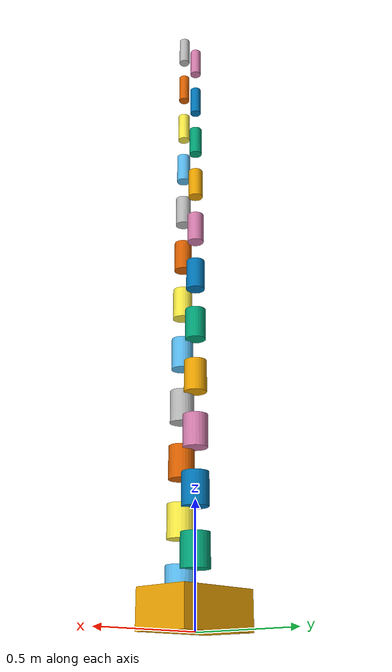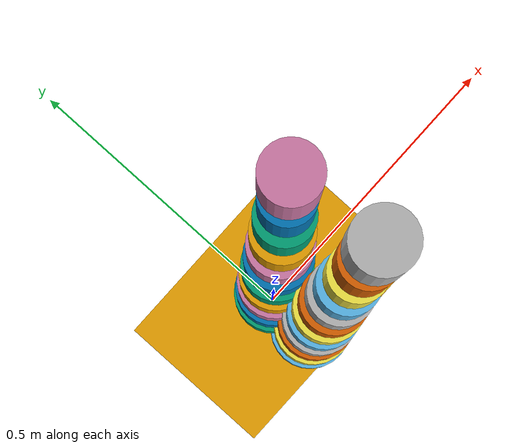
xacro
<?xml version="1.0"?>
<robot xmlns:xacro="http://www.ros.org/wiki/xacro" name="stretch">
    <xacro:arg name="initial_positions_file" default="initial_positions.yaml" />

    <!-- Import stretch urdf file -->
    <xacro:include filename="$(find stretch_description)/urdf/stretch.urdf" />

    <!-- This added sections seems to confuse things so ignore it -->

    <!-- We add another fake link between odom and base-link -->
    <link name="fake_turn_link"/>
    <joint name="base_turn" type="revolute">
        <limit effort="100.0" lower="-3.14" upper="3.14" velocity="1.0"/>

        <parent link="fake_turn_link"/>
        <child link="base_link"/>
        <axis xyz="0 0 1"/>
    </joint>

    <!-- Import control_xacro -->
    <xacro:include filename="stretch.ros2_control.xacro" />

    <xacro:stretch_ros2_control name="FakeSystem" initial_positions_file="$(arg initial_positions_file)"/>

</robot>

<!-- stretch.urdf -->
<!-- 现实基准原件: stretch_description (urdf/stretch.urdf)                                          -->
<!-- 机型描述: Hello Robot Stretch 标准 ROS Description 基准                                                                   -->
<!-- 运动学拓扑统计: 44 连杆 / 43 关节                                                    -->
<robot name="stretch_description">
  <link name="base_link">
    <inertial>
      <origin xyz="0 0 0.08" rpy="0 0 0"/>
      <mass value="16.40"/>
      <inertia ixx="0.185" ixy="0.0" ixz="0.0" iyy="0.240" iyz="0.0" izz="0.295"/>
    </inertial>
    <visual>
      <origin xyz="0 0 0.08" rpy="0 0 0"/>
      <geometry><box size="0.38 0.26 0.16"/></geometry>
    </visual>
    <collision>
      <origin xyz="0 0 0.08" rpy="0 0 0"/>
      <geometry><box size="0.38 0.26 0.16"/></geometry>
    </collision>
  </link>

  <link name="link_1">
    <inertial>
      <origin xyz="0 0 0.06" rpy="0 0 0"/>
      <mass value="3.200"/>
      <inertia ixx="0.014" ixy="0.0" ixz="0.0" iyy="0.014" iyz="0.0" izz="0.008"/>
    </inertial>
    <visual>
      <origin xyz="0 0 0.06" rpy="0 0 0"/>
      <geometry><cylinder radius="0.063" length="0.14"/></geometry>
    </visual>
  </link>
  <joint name="joint_1" type="revolute">
    <parent link="base_link"/>
    <child link="link_1"/>
    <origin xyz="0 -0.080 0.12" rpy="0 0 0"/>
    <axis xyz="1 0 0"/>
    <limit lower="-2.7925" upper="2.7925" effort="85.0" velocity="6.28"/>
  </joint>

  <link name="link_2">
    <inertial>
      <origin xyz="0 0 0.06" rpy="0 0 0"/>
      <mass value="2.263"/>
      <inertia ixx="0.014" ixy="0.0" ixz="0.0" iyy="0.014" iyz="0.0" izz="0.008"/>
    </inertial>
    <visual>
      <origin xyz="0 0 0.06" rpy="0 0 0"/>
      <geometry><cylinder radius="0.061" length="0.14"/></geometry>
    </visual>
  </link>
  <joint name="joint_2" type="revolute">
    <parent link="link_1"/>
    <child link="link_2"/>
    <origin xyz="0 0.080 0.12" rpy="0 0 0"/>
    <axis xyz="0 1 0"/>
    <limit lower="-2.7925" upper="2.7925" effort="85.0" velocity="6.28"/>
  </joint>

  <link name="link_3">
    <inertial>
      <origin xyz="0 0 0.06" rpy="0 0 0"/>
      <mass value="1.848"/>
      <inertia ixx="0.014" ixy="0.0" ixz="0.0" iyy="0.014" iyz="0.0" izz="0.008"/>
    </inertial>
    <visual>
      <origin xyz="0 0 0.06" rpy="0 0 0"/>
      <geometry><cylinder radius="0.059" length="0.14"/></geometry>
    </visual>
  </link>
  <joint name="joint_3" type="revolute">
    <parent link="link_2"/>
    <child link="link_3"/>
    <origin xyz="0 -0.080 0.12" rpy="0 0 0"/>
    <axis xyz="0 0 1"/>
    <limit lower="-2.7925" upper="2.7925" effort="85.0" velocity="6.28"/>
  </joint>

  <link name="link_4">
    <inertial>
      <origin xyz="0 0 0.06" rpy="0 0 0"/>
      <mass value="1.600"/>
      <inertia ixx="0.014" ixy="0.0" ixz="0.0" iyy="0.014" iyz="0.0" izz="0.008"/>
    </inertial>
    <visual>
      <origin xyz="0 0 0.06" rpy="0 0 0"/>
      <geometry><cylinder radius="0.057" length="0.14"/></geometry>
    </visual>
  </link>
  <joint name="joint_4" type="revolute">
    <parent link="link_3"/>
    <child link="link_4"/>
    <origin xyz="0 0.080 0.12" rpy="0 0 0"/>
    <axis xyz="0 1 0"/>
    <limit lower="-2.7925" upper="2.7925" effort="85.0" velocity="6.28"/>
  </joint>

  <link name="link_5">
    <inertial>
      <origin xyz="0 0 0.06" rpy="0 0 0"/>
      <mass value="1.431"/>
      <inertia ixx="0.014" ixy="0.0" ixz="0.0" iyy="0.014" iyz="0.0" izz="0.008"/>
    </inertial>
    <visual>
      <origin xyz="0 0 0.06" rpy="0 0 0"/>
      <geometry><cylinder radius="0.055" length="0.14"/></geometry>
    </visual>
  </link>
  <joint name="joint_5" type="revolute">
    <parent link="link_4"/>
    <child link="link_5"/>
    <origin xyz="0 -0.080 0.12" rpy="0 0 0"/>
    <axis xyz="1 0 0"/>
    <limit lower="-2.7925" upper="2.7925" effort="85.0" velocity="6.28"/>
  </joint>

  <link name="link_6">
    <inertial>
      <origin xyz="0 0 0.06" rpy="0 0 0"/>
      <mass value="1.306"/>
      <inertia ixx="0.014" ixy="0.0" ixz="0.0" iyy="0.014" iyz="0.0" izz="0.008"/>
    </inertial>
    <visual>
      <origin xyz="0 0 0.06" rpy="0 0 0"/>
      <geometry><cylinder radius="0.053" length="0.14"/></geometry>
    </visual>
  </link>
  <joint name="joint_6" type="revolute">
    <parent link="link_5"/>
    <child link="link_6"/>
    <origin xyz="0 0.080 0.12" rpy="0 0 0"/>
    <axis xyz="0 0 1"/>
    <limit lower="-2.7925" upper="2.7925" effort="85.0" velocity="6.28"/>
  </joint>

  <link name="link_7">
    <inertial>
      <origin xyz="0 0 0.06" rpy="0 0 0"/>
      <mass value="1.209"/>
      <inertia ixx="0.014" ixy="0.0" ixz="0.0" iyy="0.014" iyz="0.0" izz="0.008"/>
    </inertial>
    <visual>
      <origin xyz="0 0 0.06" rpy="0 0 0"/>
      <geometry><cylinder radius="0.051" length="0.14"/></geometry>
    </visual>
  </link>
  <joint name="joint_7" type="revolute">
    <parent link="link_6"/>
    <child link="link_7"/>
    <origin xyz="0 -0.080 0.12" rpy="0 0 0"/>
    <axis xyz="1 0 0"/>
    <limit lower="-2.7925" upper="2.7925" effort="85.0" velocity="6.28"/>
  </joint>

  <link name="link_8">
    <inertial>
      <origin xyz="0 0 0.06" rpy="0 0 0"/>
      <mass value="1.131"/>
      <inertia ixx="0.014" ixy="0.0" ixz="0.0" iyy="0.014" iyz="0.0" izz="0.008"/>
    </inertial>
    <visual>
      <origin xyz="0 0 0.06" rpy="0 0 0"/>
      <geometry><cylinder radius="0.049" length="0.14"/></geometry>
    </visual>
  </link>
  <joint name="joint_8" type="revolute">
    <parent link="link_7"/>
    <child link="link_8"/>
    <origin xyz="0 0.080 0.12" rpy="0 0 0"/>
    <axis xyz="0 1 0"/>
    <limit lower="-2.7925" upper="2.7925" effort="85.0" velocity="6.28"/>
  </joint>

  <link name="link_9">
    <inertial>
      <origin xyz="0 0 0.06" rpy="0 0 0"/>
      <mass value="1.067"/>
      <inertia ixx="0.014" ixy="0.0" ixz="0.0" iyy="0.014" iyz="0.0" izz="0.008"/>
    </inertial>
    <visual>
      <origin xyz="0 0 0.06" rpy="0 0 0"/>
      <geometry><cylinder radius="0.047" length="0.14"/></geometry>
    </visual>
  </link>
  <joint name="joint_9" type="revolute">
    <parent link="link_8"/>
    <child link="link_9"/>
    <origin xyz="0 -0.080 0.12" rpy="0 0 0"/>
    <axis xyz="0 0 1"/>
    <limit lower="-2.7925" upper="2.7925" effort="85.0" velocity="6.28"/>
  </joint>

  <link name="link_10">
    <inertial>
      <origin xyz="0 0 0.06" rpy="0 0 0"/>
      <mass value="1.012"/>
      <inertia ixx="0.014" ixy="0.0" ixz="0.0" iyy="0.014" iyz="0.0" izz="0.008"/>
    </inertial>
    <visual>
      <origin xyz="0 0 0.06" rpy="0 0 0"/>
      <geometry><cylinder radius="0.045" length="0.14"/></geometry>
    </visual>
  </link>
  <joint name="joint_10" type="revolute">
    <parent link="link_9"/>
    <child link="link_10"/>
    <origin xyz="0 0.080 0.12" rpy="0 0 0"/>
    <axis xyz="0 1 0"/>
    <limit lower="-2.7925" upper="2.7925" effort="85.0" velocity="6.28"/>
  </joint>

  <link name="link_11">
    <inertial>
      <origin xyz="0 0 0.06" rpy="0 0 0"/>
      <mass value="0.965"/>
      <inertia ixx="0.014" ixy="0.0" ixz="0.0" iyy="0.014" iyz="0.0" izz="0.008"/>
    </inertial>
    <visual>
      <origin xyz="0 0 0.06" rpy="0 0 0"/>
      <geometry><cylinder radius="0.043" length="0.14"/></geometry>
    </visual>
  </link>
  <joint name="joint_11" type="revolute">
    <parent link="link_10"/>
    <child link="link_11"/>
    <origin xyz="0 -0.080 0.12" rpy="0 0 0"/>
    <axis xyz="1 0 0"/>
    <limit lower="-2.7925" upper="2.7925" effort="85.0" velocity="6.28"/>
  </joint>

  <link name="link_12">
    <inertial>
      <origin xyz="0 0 0.06" rpy="0 0 0"/>
      <mass value="0.924"/>
      <inertia ixx="0.014" ixy="0.0" ixz="0.0" iyy="0.014" iyz="0.0" izz="0.008"/>
    </inertial>
    <visual>
      <origin xyz="0 0 0.06" rpy="0 0 0"/>
      <geometry><cylinder radius="0.041" length="0.14"/></geometry>
    </visual>
  </link>
  <joint name="joint_12" type="revolute">
    <parent link="link_11"/>
    <child link="link_12"/>
    <origin xyz="0 0.080 0.12" rpy="0 0 0"/>
    <axis xyz="0 0 1"/>
    <limit lower="-2.7925" upper="2.7925" effort="85.0" velocity="6.28"/>
  </joint>

  <link name="link_13">
    <inertial>
      <origin xyz="0 0 0.06" rpy="0 0 0"/>
      <mass value="0.888"/>
      <inertia ixx="0.014" ixy="0.0" ixz="0.0" iyy="0.014" iyz="0.0" izz="0.008"/>
    </inertial>
    <visual>
      <origin xyz="0 0 0.06" rpy="0 0 0"/>
      <geometry><cylinder radius="0.039" length="0.14"/></geometry>
    </visual>
  </link>
  <joint name="joint_13" type="revolute">
    <parent link="link_12"/>
    <child link="link_13"/>
    <origin xyz="0 -0.080 0.12" rpy="0 0 0"/>
    <axis xyz="1 0 0"/>
    <limit lower="-2.7925" upper="2.7925" effort="85.0" velocity="6.28"/>
  </joint>

  <link name="link_14">
    <inertial>
      <origin xyz="0 0 0.06" rpy="0 0 0"/>
      <mass value="0.855"/>
      <inertia ixx="0.014" ixy="0.0" ixz="0.0" iyy="0.014" iyz="0.0" izz="0.008"/>
    </inertial>
    <visual>
      <origin xyz="0 0 0.06" rpy="0 0 0"/>
      <geometry><cylinder radius="0.037" length="0.14"/></geometry>
    </visual>
  </link>
  <joint name="joint_14" type="revolute">
    <parent link="link_13"/>
    <child link="link_14"/>
    <origin xyz="0 0.080 0.12" rpy="0 0 0"/>
    <axis xyz="0 1 0"/>
    <limit lower="-2.7925" upper="2.7925" effort="85.0" velocity="6.28"/>
  </joint>

  <link name="link_15">
    <inertial>
      <origin xyz="0 0 0.06" rpy="0 0 0"/>
      <mass value="0.826"/>
      <inertia ixx="0.014" ixy="0.0" ixz="0.0" iyy="0.014" iyz="0.0" izz="0.008"/>
    </inertial>
    <visual>
      <origin xyz="0 0 0.06" rpy="0 0 0"/>
      <geometry><cylinder radius="0.035" length="0.14"/></geometry>
    </visual>
  </link>
  <joint name="joint_15" type="revolute">
    <parent link="link_14"/>
    <child link="link_15"/>
    <origin xyz="0 -0.080 0.12" rpy="0 0 0"/>
    <axis xyz="0 0 1"/>
    <limit lower="-2.7925" upper="2.7925" effort="85.0" velocity="6.28"/>
  </joint>

  <link name="link_16">
    <inertial>
      <origin xyz="0 0 0.06" rpy="0 0 0"/>
      <mass value="0.800"/>
      <inertia ixx="0.014" ixy="0.0" ixz="0.0" iyy="0.014" iyz="0.0" izz="0.008"/>
    </inertial>
    <visual>
      <origin xyz="0 0 0.06" rpy="0 0 0"/>
      <geometry><cylinder radius="0.033" length="0.14"/></geometry>
    </visual>
  </link>
  <joint name="joint_16" type="revolute">
    <parent link="link_15"/>
    <child link="link_16"/>
    <origin xyz="0 0.080 0.12" rpy="0 0 0"/>
    <axis xyz="0 1 0"/>
    <limit lower="-2.7925" upper="2.7925" effort="85.0" velocity="6.28"/>
  </joint>

  <link name="link_17">
    <inertial>
      <origin xyz="0 0 0.06" rpy="0 0 0"/>
      <mass value="0.776"/>
      <inertia ixx="0.014" ixy="0.0" ixz="0.0" iyy="0.014" iyz="0.0" izz="0.008"/>
    </inertial>
    <visual>
      <origin xyz="0 0 0.06" rpy="0 0 0"/>
      <geometry><cylinder radius="0.031" length="0.14"/></geometry>
    </visual>
  </link>
  <joint name="joint_17" type="revolute">
    <parent link="link_16"/>
    <child link="link_17"/>
    <origin xyz="0 -0.080 0.12" rpy="0 0 0"/>
    <axis xyz="1 0 0"/>
    <limit lower="-2.7925" upper="2.7925" effort="85.0" velocity="6.28"/>
  </joint>

  <link name="link_18">
    <inertial>
      <origin xyz="0 0 0.06" rpy="0 0 0"/>
      <mass value="0.754"/>
      <inertia ixx="0.014" ixy="0.0" ixz="0.0" iyy="0.014" iyz="0.0" izz="0.008"/>
    </inertial>
    <visual>
      <origin xyz="0 0 0.06" rpy="0 0 0"/>
      <geometry><cylinder radius="0.029" length="0.14"/></geometry>
    </visual>
  </link>
  <joint name="joint_18" type="revolute">
    <parent link="link_17"/>
    <child link="link_18"/>
    <origin xyz="0 0.080 0.12" rpy="0 0 0"/>
    <axis xyz="0 0 1"/>
    <limit lower="-2.7925" upper="2.7925" effort="85.0" velocity="6.28"/>
  </joint>

  <link name="link_19">
    <inertial>
      <origin xyz="0 0 0.06" rpy="0 0 0"/>
      <mass value="0.734"/>
      <inertia ixx="0.014" ixy="0.0" ixz="0.0" iyy="0.014" iyz="0.0" izz="0.008"/>
    </inertial>
    <visual>
      <origin xyz="0 0 0.06" rpy="0 0 0"/>
      <geometry><cylinder radius="0.027" length="0.14"/></geometry>
    </visual>
  </link>
  <joint name="joint_19" type="revolute">
    <parent link="link_18"/>
    <child link="link_19"/>
    <origin xyz="0 -0.080 0.12" rpy="0 0 0"/>
    <axis xyz="1 0 0"/>
    <limit lower="-2.7925" upper="2.7925" effort="85.0" velocity="6.28"/>
  </joint>

  <link name="link_20">
    <inertial>
      <origin xyz="0 0 0.06" rpy="0 0 0"/>
      <mass value="0.716"/>
      <inertia ixx="0.014" ixy="0.0" ixz="0.0" iyy="0.014" iyz="0.0" izz="0.008"/>
    </inertial>
    <visual>
      <origin xyz="0 0 0.06" rpy="0 0 0"/>
      <geometry><cylinder radius="0.025" length="0.14"/></geometry>
    </visual>
  </link>
  <joint name="joint_20" type="revolute">
    <parent link="link_19"/>
    <child link="link_20"/>
    <origin xyz="0 0.080 0.12" rpy="0 0 0"/>
    <axis xyz="0 1 0"/>
    <limit lower="-2.7925" upper="2.7925" effort="85.0" velocity="6.28"/>
  </joint>

  <link name="link_21">
    <inertial>
      <origin xyz="0 0 0.06" rpy="0 0 0"/>
      <mass value="0.698"/>
      <inertia ixx="0.014" ixy="0.0" ixz="0.0" iyy="0.014" iyz="0.0" izz="0.008"/>
    </inertial>
    <visual>
      <origin xyz="0 0 0.06" rpy="0 0 0"/>
      <geometry><cylinder radius="0.025" length="0.14"/></geometry>
    </visual>
  </link>
  <joint name="joint_21" type="revolute">
    <parent link="link_20"/>
    <child link="link_21"/>
    <origin xyz="0 -0.080 0.12" rpy="0 0 0"/>
    <axis xyz="0 0 1"/>
    <limit lower="-2.7925" upper="2.7925" effort="85.0" velocity="6.28"/>
  </joint>

  <link name="link_22">
    <inertial>
      <origin xyz="0 0 0.06" rpy="0 0 0"/>
      <mass value="0.682"/>
      <inertia ixx="0.014" ixy="0.0" ixz="0.0" iyy="0.014" iyz="0.0" izz="0.008"/>
    </inertial>
    <visual>
      <origin xyz="0 0 0.06" rpy="0 0 0"/>
      <geometry><cylinder radius="0.025" length="0.14"/></geometry>
    </visual>
  </link>
  <joint name="joint_22" type="revolute">
    <parent link="link_21"/>
    <child link="link_22"/>
    <origin xyz="0 0.080 0.12" rpy="0 0 0"/>
    <axis xyz="0 1 0"/>
    <limit lower="-2.7925" upper="2.7925" effort="85.0" velocity="6.28"/>
  </joint>

  <link name="link_23">
    <inertial>
      <origin xyz="0 0 0.06" rpy="0 0 0"/>
      <mass value="0.667"/>
      <inertia ixx="0.014" ixy="0.0" ixz="0.0" iyy="0.014" iyz="0.0" izz="0.008"/>
    </inertial>
    <visual>
      <origin xyz="0 0 0.06" rpy="0 0 0"/>
      <geometry><cylinder radius="0.025" length="0.14"/></geometry>
    </visual>
  </link>
  <joint name="joint_23" type="revolute">
    <parent link="link_22"/>
    <child link="link_23"/>
    <origin xyz="0 -0.080 0.12" rpy="0 0 0"/>
    <axis xyz="1 0 0"/>
    <limit lower="-2.7925" upper="2.7925" effort="85.0" velocity="6.28"/>
  </joint>
</robot>
